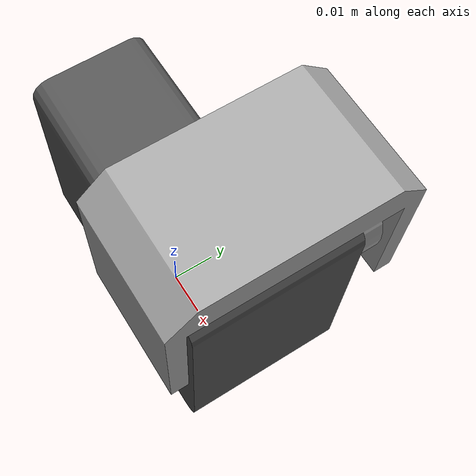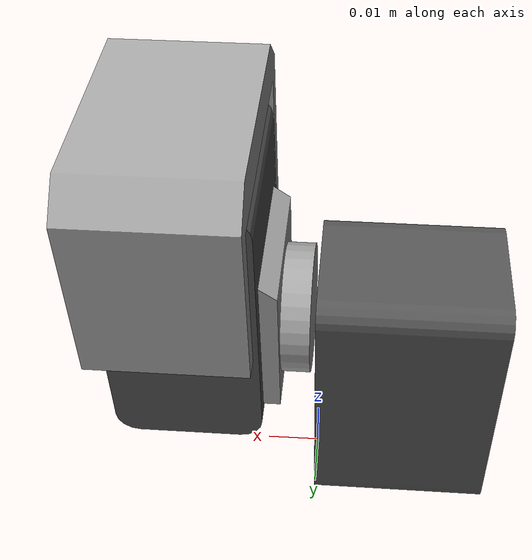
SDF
<?xml version='1.0'?>
<sdf version='1.5'>
  <model name="laser_leveling">
    <static>false</static>

    <link name="dynamixel_roll">
      <pose>0 0 0.0385 0 0 0</pose>

      <inertial>
        <pose>-0.016060 0.000006 -0.013540 0 0 0</pose>
        <mass>0.06</mass>
        <inertia>
          <ixx>0.002137e-2</ixx>
          <iyy>0.002384e-2</iyy>
          <izz>0.001158e-2</izz>
          <ixy>0</ixy>
          <ixz>0</ixz>
          <ixz>-0.000001e-2</ixz>
        </inertia>
      </inertial>

      <collision name="collision">
        <pose>-0.02 0 -0.015 0 0 0</pose>
        <geometry>
          <box>
            <size>0.04 0.032 0.06</size>
          </box>
        </geometry>
      </collision>

      <visual name="visual">
        <geometry>
          <mesh>
            <uri>model://laser_leveling/meshes/dynamixel_ax12a.dae</uri>
          </mesh>
        </geometry>
      </visual>
    </link>

    <link name="dynamixel_pitch">
      <pose>0.022 0.016 0.06 0 0 1.570796327</pose>

      <inertial>
        <pose>-0.016060 0.000006 -0.013540 0 0 0</pose>
        <mass>0.06</mass>
        <inertia>
          <ixx>0.002137e-2</ixx>
          <iyy>0.002384e-2</iyy>
          <izz>0.001158e-2</izz>
          <ixy>0</ixy>
          <ixz>0</ixz>
          <ixz>-0.000001e-2</ixz>
        </inertia>
      </inertial>

      <collision name="collision">
        <pose>-0.02 0 -0.015 0 0 0</pose>
        <geometry>
          <box>
            <size>0.04 0.032 0.06</size>
          </box>
        </geometry>
      </collision>

      <visual name="visual">
        <geometry>
          <mesh>
            <uri>model://laser_leveling/meshes/dynamixel_ax12a.dae</uri>
          </mesh>
        </geometry>
      </visual>
    </link>

    <link name="mount_dynamixel_roll">
      <pose>0 0 0.0385 0 0 0</pose>

      <inertial>
        <pose>0.005832 -0.000000 0.001146 0 0 0</pose>
        <mass>0.01</mass>
        <inertia>
          <ixx>0.000087e-2</ixx>
          <iyy>0.000051e-2</iyy>
          <izz>0.000047e-2</izz>
          <ixy>0</ixy>
          <ixz>-0.000002e-2</ixz>
          <iyz>0</iyz>
        </inertia>
      </inertial>

      <collision name="collision">
        <pose>0.0045 0 0 0 0 0</pose>
        <geometry>
          <box>
            <size>0.009 0.026 0.03</size>
          </box>
        </geometry>
      </collision>

      <visual name="visual">
        <geometry>
          <mesh>
            <uri>model://laser_leveling/meshes/dynamixel_ax12a_mount_side.dae</uri>
          </mesh>
        </geometry>
      </visual>
    </link>

    <link name="mount_dynamixel_pitch">
      <pose>0.022 0.016 0.06 0 0 1.570796327</pose>

      <inertial>
        <pose>-0.011189 -0.000000 0.010418 0 0 0</pose>
        <mass>0.01</mass>
        <inertia>
          <ixx>0.000453e-3</ixx>
          <iyy>0.001079e-3</iyy>
          <izz>0.000949e-3</izz>
          <ixy>0</ixy>
          <ixz>0.000073e-3</ixz>
          <iyz>0</iyz>
        </inertia>
      </inertial>

      <visual name="visual">
        <geometry>
          <mesh>
            <uri>model://laser_leveling/meshes/dynamixel_ax12a_mount.dae</uri>
          </mesh>
        </geometry>
      </visual>
    </link>

    <!-- Joints -->
    <joint name="roll" type="revolute">
      <pose>0 0 0 0 0 0</pose>
      <child>mount_dynamixel_roll</child>
      <parent>dynamixel_roll</parent>
      <use_parent_model_frame>true</use_parent_model_frame>
      <axis>
        <xyz>1 0 0</xyz>
        <limit>
          <lower>-1.570796327</lower>
          <upper>1.570796327</upper>
        </limit>
        <dynamics>
          <friction>0.01</friction>
        </dynamics>
      </axis>
    </joint>

    <joint name="mount_roll_pitch" type="fixed">
      <child>dynamixel_pitch</child>
      <parent>mount_dynamixel_roll</parent>
    </joint>

    <joint name="pitch" type="revolute">
      <pose>0 0 0 0 0 0</pose>
      <child>mount_dynamixel_pitch</child>
      <parent>dynamixel_pitch</parent>
      <use_parent_model_frame>true</use_parent_model_frame>
      <axis>
        <xyz>1 0 0</xyz>
        <limit>
          <lower>-1.570796327</lower>
          <upper>1.570796327</upper>
        </limit>
        <dynamics>
          <friction>0.01</friction>
        </dynamics>
      </axis>
    </joint>

    <plugin name="controller" filename="libgazebo-francor-laser-leveling-plugin.so">
      <jointServoRoll>roll</jointServoRoll>
      <jointServoPitch>pitch</jointServoPitch>
    </plugin>
  </model>
</sdf>
